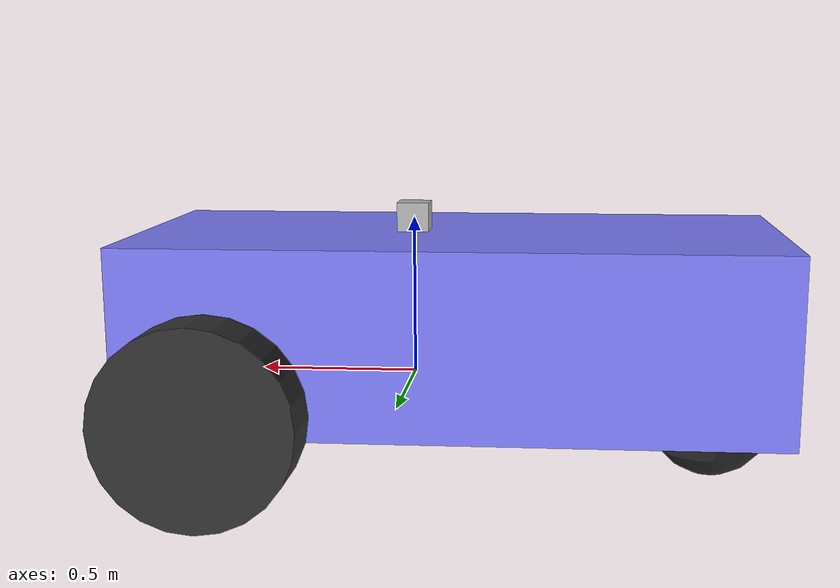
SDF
<?xml version="1.0"?>
<sdf version="1.8">
  <model name='diff_drive'>
    <link name='base_link'></link>
    <link name='chassis'>
      <pose>-0.151427 -0 0.175 0 -0 0</pose>
      <inertial>
        <mass>1.14395</mass>
        <inertia>
          <ixx>0.126164</ixx>
          <ixy>0</ixy>
          <ixz>0</ixz>
          <iyy>0.416519</iyy>
          <iyz>0</iyz>
          <izz>0.481014</izz>
        </inertia>
      </inertial>
      <visual name='visual_chassis'>
        <geometry>
          <box>
            <size>2.01142 1 0.568726</size>
          </box>
        </geometry>
        <material>
          <ambient>0.5 0.5 1.0 1</ambient>
          <diffuse>0.5 0.5 1.0 1</diffuse>
          <specular>0.0 0.0 1.0 1</specular>
        </material>
      </visual>
      <collision name='collision_chassis'>
        <geometry>
          <box>
            <size>2.01142 1 0.568726</size>
          </box>
        </geometry>
      </collision>
    </link>

    <link name='left_wheel'>
      <pose>0.554283 0.625029 -0.025 -1.5707 0 0</pose>
      <inertial>
        <mass>2</mass>
        <inertia>
          <ixx>0.145833</ixx>
          <ixy>0</ixy>
          <ixz>0</ixz>
          <iyy>0.145833</iyy>
          <iyz>0</iyz>
          <izz>0.125</izz>
        </inertia>
      </inertial>
      <visual name='visual_left_wheel'>
        <geometry>
          <cylinder>
            <radius>0.3</radius>
            <length>0.2</length>
          </cylinder>
        </geometry>
        <material>
          <ambient>0.2 0.2 0.2 1</ambient>
          <diffuse>0.2 0.2 0.2 1</diffuse>
          <specular>0.2 0.2 0.2 1</specular>
        </material>
      </visual>
      <collision name='collision_left_wheel'>
        <geometry>
          <cylinder>
            <radius>0.3</radius>
            <length>0.2</length>
          </cylinder>
        </geometry>
      </collision>
    </link>

    <link name='right_wheel'>
      <pose>0.554282 -0.625029 -0.025 -1.5707 0 0</pose>
      <inertial>
        <mass>2</mass>
        <inertia>
          <ixx>0.145833</ixx>
          <ixy>0</ixy>
          <ixz>0</ixz>
          <iyy>0.145833</iyy>
          <iyz>0</iyz>
          <izz>0.125</izz>
        </inertia>
      </inertial>
      <visual name='visual_right_wheel'>
        <geometry>
          <cylinder>
            <radius>0.3</radius>
            <length>0.2</length>
          </cylinder>
        </geometry>
        <material>
          <ambient>0.2 0.2 0.2 1</ambient>
          <diffuse>0.2 0.2 0.2 1</diffuse>
          <specular>0.2 0.2 0.2 1</specular>
        </material>
      </visual>
      <collision name='collision_right_wheel'>
        <geometry>
          <cylinder>
            <radius>0.3</radius>
            <length>0.2</length>
          </cylinder>
        </geometry>
      </collision>
    </link>

    <link name='caster'>
      <pose>-0.957138 -0 -0.125 0 -0 0</pose>
      <inertial>
        <mass>1</mass>
        <inertia>
          <ixx>0.1</ixx>
          <ixy>0</ixy>
          <ixz>0</ixz>
          <iyy>0.1</iyy>
          <iyz>0</iyz>
          <izz>0.1</izz>
        </inertia>
      </inertial>
      <visual name='visual_caster'>
        <geometry>
          <sphere>
            <radius>0.2</radius>
          </sphere>
        </geometry>
        <material>
          <ambient>0.2 0.2 0.2 1</ambient>
          <diffuse>0.2 0.2 0.2 1</diffuse>
          <specular>0.2 0.2 0.2 1</specular>
        </material>
      </visual>
      <collision name='collision_caster'>
        <geometry>
          <sphere>
            <radius>0.2</radius>
          </sphere>
        </geometry>
      </collision>
    </link>

    <link name="lidar_link">
      <pose>0 0 0.5 0 0 0</pose>
      <inertial>
        <mass>0.1</mass>
        <inertia>
          <ixx>0.000166667</ixx>
          <iyy>0.000166667</iyy>
          <izz>0.000166667</izz>
        </inertia>
      </inertial>
      <collision name="collision">
        <geometry>
          <box>
            <size>0.1 0.1 0.1</size>
          </box>
        </geometry>
      </collision>
      <visual name="visual">
        <geometry>
          <box>
            <size>0.1 0.1 0.1</size>
          </box>
        </geometry>
      </visual>
      <sensor name='gpu_lidar' type='gpu_lidar'>
        <pose>0 0 0 0 0 0</pose>
        <topic>/model/diff_drive_robot/scan</topic>
        <gz_frame_id>diff_drive_robot/lidar_link</gz_frame_id>
        <update_rate>10</update_rate>
        <lidar>
          <scan>
            <horizontal>
              <samples>640</samples>
              <resolution>1</resolution>
              <min_angle>-1.396263</min_angle>
              <max_angle>1.396263</max_angle>
            </horizontal>
            <vertical>
              <samples>1</samples>
              <resolution>1</resolution>
              <min_angle>0.0</min_angle>
              <max_angle>0.0</max_angle>
            </vertical>
          </scan>
          <range>
            <min>0.08</min>
            <max>10.0</max>
            <resolution>0.01</resolution>
          </range>
        </lidar>
        <always_on>1</always_on>
        <visualize>true</visualize>
      </sensor>
    </link>

    <joint name='chassis_joint' type='fixed'>
      <parent>base_link</parent>
      <child>chassis</child>
    </joint>

    <joint name='lidar_joint' type='fixed'>
      <parent>chassis</parent>
      <child>lidar_link</child>
    </joint>

    <joint name='left_wheel_joint' type='revolute'>
      <parent>chassis</parent>
      <child>left_wheel</child>
      <axis>
        <xyz>0 0 1</xyz>
        <limit>
          <lower>-1.79769e+308</lower>
          <upper>1.79769e+308</upper>
        </limit>
      </axis>
    </joint>

    <joint name='right_wheel_joint' type='revolute'>
      <parent>chassis</parent>
      <child>right_wheel</child>
      <axis>
        <xyz>0 0 1</xyz>
        <limit>
          <lower>-1.79769e+308</lower>
          <upper>1.79769e+308</upper>
        </limit>
      </axis>
    </joint>

    <joint name='caster_wheel' type='ball'>
      <parent>chassis</parent>
      <child>caster</child>
    </joint>

    <plugin
      filename="gz-sim8-diff-drive-system"
      name="gz::sim::systems::DiffDrive">
      <left_joint>left_wheel_joint</left_joint>
      <right_joint>right_wheel_joint</right_joint>
      <wheel_separation>1.25</wheel_separation>
      <wheel_radius>0.3</wheel_radius>
      <odom_publish_frequency>1</odom_publish_frequency>
      <max_linear_acceleration>1</max_linear_acceleration>
      <min_linear_acceleration>-1</min_linear_acceleration>
      <max_angular_acceleration>2</max_angular_acceleration>
      <min_angular_acceleration>-2</min_angular_acceleration>
      <max_linear_velocity>20</max_linear_velocity>
      <min_linear_velocity>-20</min_linear_velocity>
      <max_angular_velocity>1</max_angular_velocity>
      <min_angular_velocity>-1</min_angular_velocity>
    </plugin>

    <plugin
      filename="gz-sim-joint-state-publisher-system"
      name="gz::sim::systems::JointStatePublisher">
    </plugin>

    <plugin
      filename="gz-sim-odometry-publisher-system"
      name="gz::sim::systems::OdometryPublisher">
      <odom_frame>diff_drive_robot_odom</odom_frame>
      <robot_base_frame>diff_drive_robot/base_link</robot_base_frame>
    </plugin>
  </model>
</sdf>
